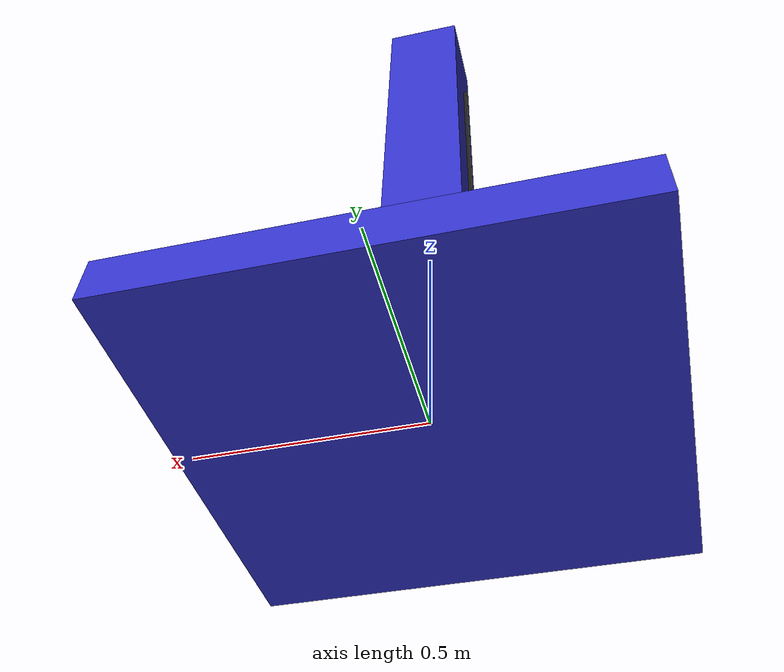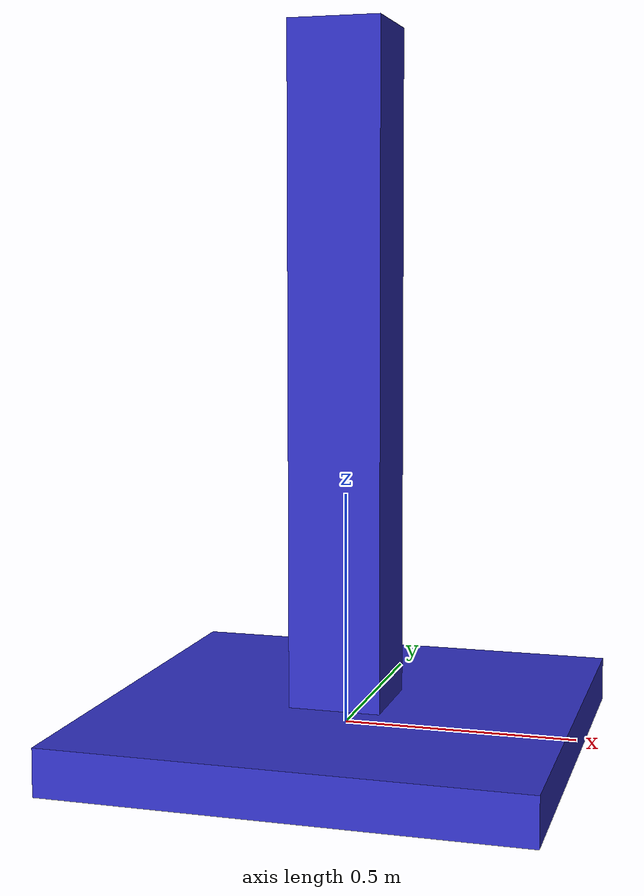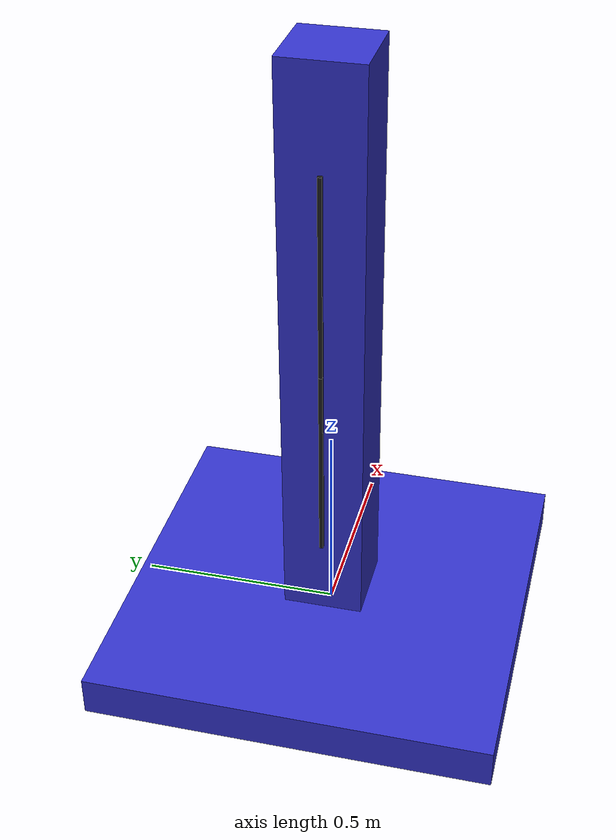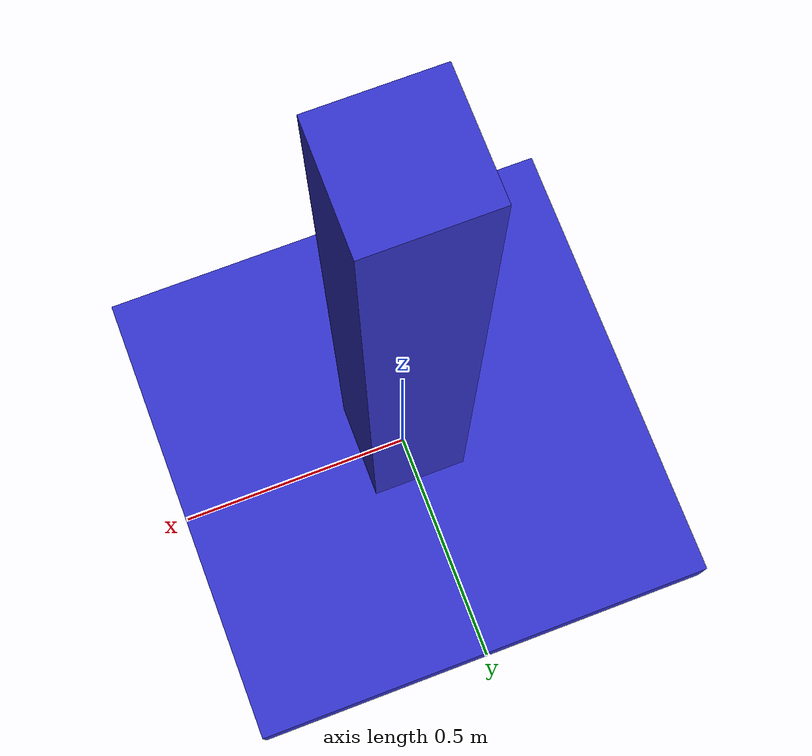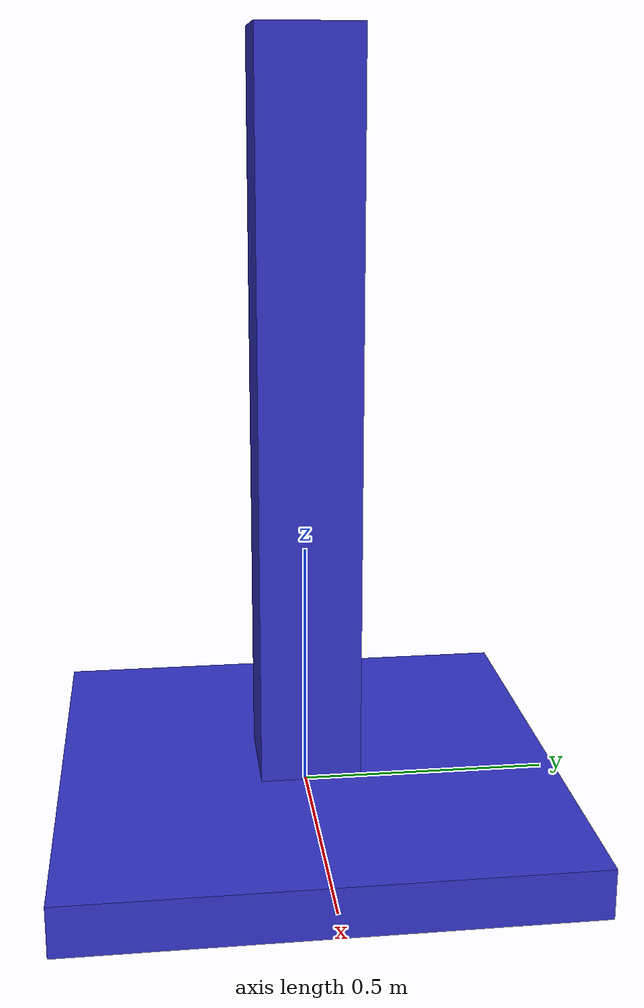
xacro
<?xml version="1.0"?>
<robot xmlns:xacro="http://www.ros.org/wiki/xacro" name="pendulum">
  <link name="base_link">
    <visual>
      <origin xyz="0 0 0.0" rpy="0 0 0"/>
      <geometry>
        <box size="1.0 1.0 0.1"/>
      </geometry>
      <material name="blue">
        <color rgba="0.2 0.2 0.8 1.0"/>
      </material>
    </visual>

    <collision>
      <origin xyz="0 0 0" rpy="0 0 0"/>
      <geometry>
        <box size="1.0 1.0 0.1"/>
      </geometry>
    </collision>

    <inertial>
      <origin xyz="0 0 0" rpy="0 0 0"/>
      <mass value="1000.0"/>
      <inertia ixx="8.416667" iyy="8.416667" izz="16.66667"
               ixy="0" ixz="0" iyz="0"/>
    </inertial>
  </link>

  <joint name="column_joint" type="fixed">
    <parent link="base_link"/>
    <child link="column_link"/>
    <origin xyz="0.0 0.0 0.75" rpy="0 0 0"/>
    <axis xyz="0 1 0"/>
  </joint>

  <link name="column_link">
    <visual>
      <origin xyz="0 0 0.0" rpy="0 0 0"/>
      <geometry>
        <box size="0.2 0.2 1.5"/>
      </geometry>
      <material name="blue">
        <color rgba="0.2 0.2 0.8 1.0"/>
      </material>
    </visual>

    <collision>
      <origin xyz="0 0 0" rpy="0 0 0"/>
      <geometry>
        <box size="0.2 0.2 1.5"/>
      </geometry>
    </collision>

    <inertial>
      <origin xyz="0 0 0" rpy="0 0 0"/>
      <mass value="1000.0"/>
      <inertia ixx="8.416667" iyy="8.416667" izz="16.66667"
               ixy="0" ixz="0" iyz="0"/>
    </inertial>
  </link>

  <joint name="pendulum_joint1" type="revolute">
    <limit effort="5.0" velocity="10.0" lower="0.0" upper="6.283" />
    <parent link="column_link"/>
    <child link="pendulum_link1"/>
    <origin xyz="-0.107 0.0 0.5" rpy="0 0 0"/>
    <axis xyz="-1 0 0"/>
    <dynamics damping="0.50" friction="0.02"/>
  </joint>

  <link name="pendulum_link1">
    <visual>
      <origin xyz="0 0 -0.25" rpy="0 0 0"/>
      <geometry>
        <box size="0.01 0.01 0.5"/>
      </geometry>
      <material name="pendulum_color">
        <color rgba="0.1 0.1 0.1 1.0"/>
      </material>
    </visual>

    <collision>
      <origin xyz="0 0 -0.25" rpy="0 0 0"/>
      <geometry>
        <box size="0.01 0.01 0.5"/>
      </geometry>
    </collision>

    <inertial>
      <origin xyz="0 0 -0.25" rpy="0 0 0"/>
      <mass value="0.5"/>
      <inertia ixx="0.04167" iyy="0.04167" izz="0.0001"
               ixy="0.0" ixz="0.0" iyz="0.0"/>
    </inertial>
  </link>

  <joint name="pendulum_joint2" type="revolute">
    <limit effort="5.0" velocity="10.0" lower="0.0" upper="6.283" />
    <parent link="pendulum_link1"/>
    <child link="pendulum_link2"/>
    <origin xyz="0.0 0.0 -0.50" rpy="0 0 0"/>
    <axis xyz="-1 0 0"/>
    <dynamics damping="0.50" friction="0.01"/>
  </joint>

  <link name="pendulum_link2">
    <visual>
      <origin xyz="0 0 -0.25" rpy="0 0 0"/>
      <geometry>
        <box size="0.01 0.01 0.5"/>
      </geometry>
      <material name="pendulum_color">
        <color rgba="0.1 0.1 0.1 1.0"/>
      </material>
    </visual>

    <collision>
      <origin xyz="0 0 -0.25" rpy="0 0 0"/>
      <geometry>
        <box size="0.01 0.01 0.5"/>
      </geometry>
    </collision>
    <inertial>
      <origin xyz="0 0 -0.25" rpy="0 0 0"/>
      <mass value="0.5"/>
      <inertia ixx="0.04167" iyy="0.04167" izz="0.0001"
               ixy="0.0" ixz="0.0" iyz="0.0"/>
    </inertial>
  </link>

  <ros2_control name="pendulum_control" type="system">
    <hardware>
      <plugin>gz_ros2_control/GazeboSimSystem</plugin>
    </hardware>
    <joint name="pendulum_joint1">
      <command_interface name="effort"/>
      <state_interface name="position"/>
      <state_interface name="velocity"/>
      <state_interface name="effort"/>
    </joint>
    <joint name="pendulum_joint2">
      <command_interface name="effort"/>
      <state_interface name="position"/>
      <state_interface name="velocity"/>
      <state_interface name="effort"/>
    </joint>
  </ros2_control>

  <gazebo>
    <plugin filename="gz-sim-joint-state-publisher-system"
            name="gz::sim::systems::JointStatePublisher">
      <joint_name>pendulum_joint1</joint_name>
      <joint_name>pendulum_joint2</joint_name>
      <topic>joint_states</topic>
      <update_rate>1000</update_rate>
    </plugin>
  </gazebo>

  <gazebo>
    <plugin filename="gz_ros2_control-system"
            name="gz_ros2_control::GazeboSimROS2ControlPlugin">
      <parameters>$(find pendulum_ctrl)/config/two_link_controller.yaml</parameters>
      <ros>
        <parameter name="use_sim_time" type="bool">true</parameter>
      </ros>
    </plugin>
  </gazebo>
</robot>
